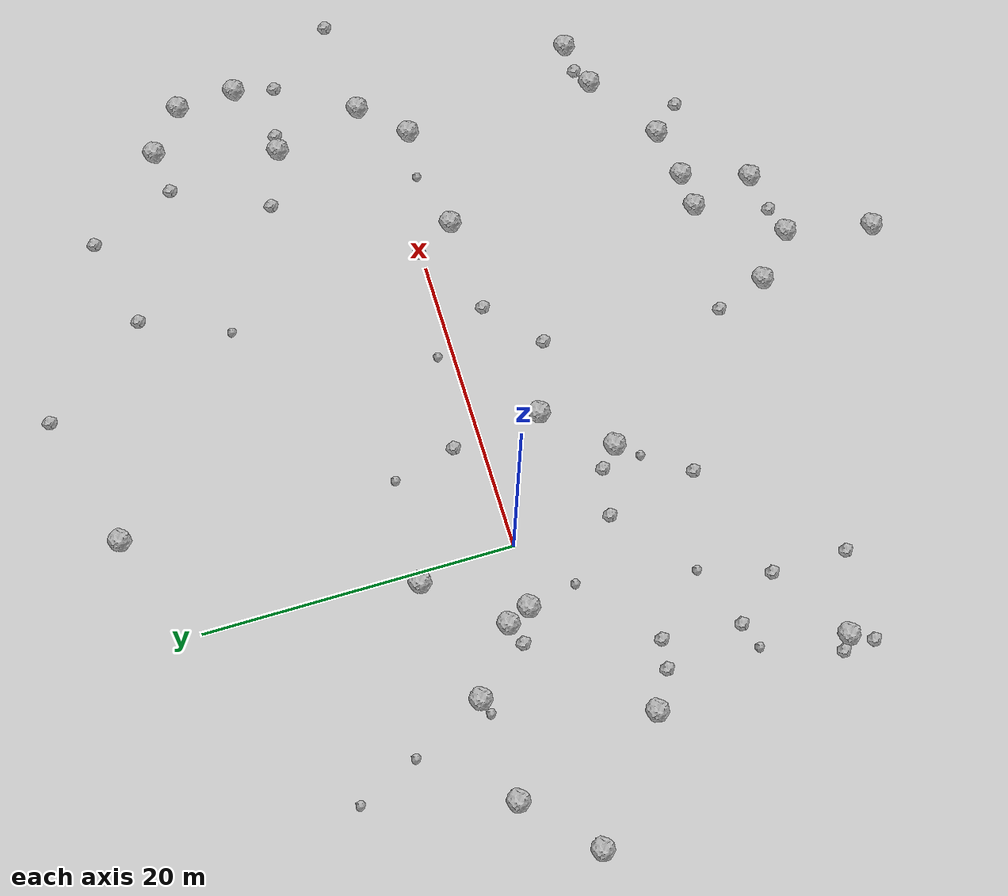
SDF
<sdf version="1.6">
 <world name="default">
  <include><uri>model://custom_ground</uri></include>
  <include><uri>model://sun</uri></include>
  <model name="rock1_0_0">
   <include><uri>model://rock1</uri><pose>-15.155290944000953 4.365618940866753 0.5 0 0 0</pose></include>
  </model>
  <model name="rock1_0_1">
   <include><uri>model://rock1</uri><pose>30.365419000079648 -14.592991532856605 0.5 0 0 0</pose></include>
  </model>
  <model name="rock1_0_2">
   <include><uri>model://rock1</uri><pose>-4.685724601052222 1.8078116303039735 0.5 0 0 0</pose></include>
  </model>
  <model name="rock1_0_3">
   <include><uri>model://rock1</uri><pose>32.927821810276846 1.2446686735971895 0.5 0 0 0</pose></include>
  </model>
  <model name="rock1_0_4">
   <include><uri>model://rock1</uri><pose>30.150597260708807 -1.5976378029808984 0.5 0 0 0</pose></include>
  </model>
  <model name="rock1_0_5">
   <include><uri>model://rock1</uri><pose>20.384381064537685 -22.731983526428003 0.5 0 0 0</pose></include>
  </model>
  <model name="rock1_0_6">
   <include><uri>model://rock1</uri><pose>-4.009605879602944 0.30030426166214497 0.5 0 0 0</pose></include>
  </model>
  <model name="rock1_0_7">
   <include><uri>model://rock1</uri><pose>25.352205897862348 -17.819912968124996 0.5 0 0 0</pose></include>
  </model>
  <model name="rock1_0_8">
   <include><uri>model://rock1</uri><pose>12.92503399981031 -21.008087417505813 0.5 0 0 0</pose></include>
  </model>
  <model name="rock1_0_9">
   <include><uri>model://rock1</uri><pose>-0.6413970402056322 6.295935949184333 0.5 0 0 0</pose></include>
  </model>
  <model name="rock1_0_10">
   <include><uri>model://rock1</uri><pose>15.815537231078586 -23.655461341816356 0.5 0 0 0</pose></include>
  </model>
  <model name="rock1_0_11">
   <include><uri>model://rock1</uri><pose>7.247741048486212 23.49112492799059 0.5 0 0 0</pose></include>
  </model>
  <model name="rock1_0_12">
   <include><uri>model://rock1</uri><pose>33.64038131830326 -13.838886148199528 0.5 0 0 0</pose></include>
  </model>
  <model name="rock1_0_13">
   <include><uri>model://rock1</uri><pose>33.44294067882 15.345545770132247 0.5 0 0 0</pose></include>
  </model>
  <model name="rock1_0_14">
   <include><uri>model://rock1</uri><pose>8.048631857187619 -4.091274904823361 0.5 0 0 0</pose></include>
  </model>
  <model name="rock1_0_15">
   <include><uri>model://rock1</uri><pose>31.29054005657496 7.2509887046850565 0.5 0 0 0</pose></include>
  </model>
  <model name="rock1_0_16">
   <include><uri>model://rock1</uri><pose>-12.38020011686414 -5.212112611298366 0.5 0 0 0</pose></include>
  </model>
  <model name="rock1_0_17">
   <include><uri>model://rock1</uri><pose>22.71396660971383 -2.4293549881669954 0.5 0 0 0</pose></include>
  </model>
  <model name="rock1_0_18">
   <include><uri>model://rock1</uri><pose>-19.237186051917103 0.4430849612807286 0.5 0 0 0</pose></include>
  </model>
  <model name="rock1_0_19">
   <include><uri>model://rock1</uri><pose>4.582420236013519 -8.045089005737445 0.5 0 0 0</pose></include>
  </model>
  <model name="rock1_0_20">
   <include><uri>model://rock1</uri><pose>14.606986802614287 -29.32037547963169 0.5 0 0 0</pose></include>
  </model>
  <model name="rock1_0_21">
   <include><uri>model://rock1</uri><pose>19.337013078334465 -18.437686806451623 0.5 0 0 0</pose></include>
  </model>
  <model name="rock1_0_22">
   <include><uri>model://rock1</uri><pose>-11.212825088565852 -17.952480824957064 0.5 0 0 0</pose></include>
  </model>
  <model name="rock1_0_23">
   <include><uri>model://rock1</uri><pose>36.42996186329433 13.011886992763806 0.5 0 0 0</pose></include>
  </model>
  <model name="rock1_0_24">
   <include><uri>model://rock1</uri><pose>-8.688486869352467 4.767346848159434 0.5 0 0 0</pose></include>
  </model>
  <model name="rock1_0_25">
   <include><uri>model://rock1</uri><pose>36.66671568372976 9.023741943835404 0.5 0 0 0</pose></include>
  </model>
  <model name="rock1_0_26">
   <include><uri>model://rock1</uri><pose>21.82293567414112 -18.34543638744787 0.5 0 0 0</pose></include>
  </model>
  <model name="rock2_0_0">
   <include><uri>model://rock2</uri><pose>21.152890966220184 0.19108551380897865 0.3 0 0 0</pose></include>
  </model>
  <model name="rock2_0_1">
   <include><uri>model://rock2</uri><pose>11.662210644562542 -17.592340504596066 0.3 0 0 0</pose></include>
  </model>
  <model name="rock2_0_2">
   <include><uri>model://rock2</uri><pose>-6.148561448682832 -19.68203694927474 0.3 0 0 0</pose></include>
  </model>
  <model name="rock2_0_3">
   <include><uri>model://rock2</uri><pose>-6.188656776708035 -14.812885038507101 0.3 0 0 0</pose></include>
  </model>
  <model name="rock2_0_4">
   <include><uri>model://rock2</uri><pose>3.2661009799126397 -6.852577313613207 0.3 0 0 0</pose></include>
  </model>
  <model name="rock2_0_5">
   <include><uri>model://rock2</uri><pose>27.813342868772153 20.698263095049207 0.3 0 0 0</pose></include>
  </model>
  <model name="rock2_0_6">
   <include><uri>model://rock2</uri><pose>16.165194366615147 -2.752231568381738 0.3 0 0 0</pose></include>
  </model>
  <model name="rock2_0_7">
   <include><uri>model://rock2</uri><pose>16.212905079257908 26.094483878973136 0.3 0 0 0</pose></include>
  </model>
  <model name="rock2_0_8">
   <include><uri>model://rock2</uri><pose>17.6675344452634 -23.152910236781203 0.3 0 0 0</pose></include>
  </model>
  <model name="rock2_0_9">
   <include><uri>model://rock2</uri><pose>12.711931435383775 -5.839265471316008 0.3 0 0 0</pose></include>
  </model>
  <model name="rock2_0_10">
   <include><uri>model://rock2</uri><pose>-6.124382838753309 1.2773143776204137 0.3 0 0 0</pose></include>
  </model>
  <model name="rock2_0_11">
   <include><uri>model://rock2</uri><pose>1.5112490304035333 -12.302126105353025 0.3 0 0 0</pose></include>
  </model>
  <model name="rock2_0_12">
   <include><uri>model://rock2</uri><pose>21.532274397430683 19.118262289963198 0.3 0 0 0</pose></include>
  </model>
  <model name="rock2_0_13">
   <include><uri>model://rock2</uri><pose>30.317073277652057 14.957250905905234 0.3 0 0 0</pose></include>
  </model>
  <model name="rock2_0_14">
   <include><uri>model://rock2</uri><pose>39.77590099883706 1.7424593463242708 0.3 0 0 0</pose></include>
  </model>
  <model name="rock2_0_15">
   <include><uri>model://rock2</uri><pose>-10.110485681391895 -6.625393339734941 0.3 0 0 0</pose></include>
  </model>
  <model name="rock2_0_16">
   <include><uri>model://rock2</uri><pose>27.31353427778742 8.713380195348279 0.3 0 0 0</pose></include>
  </model>
  <model name="rock2_0_17">
   <include><uri>model://rock2</uri><pose>32.41477166611019 7.1520383299204155 0.3 0 0 0</pose></include>
  </model>
  <model name="rock2_0_18">
   <include><uri>model://rock2</uri><pose>-12.092192879682191 -17.331173158909266 0.3 0 0 0</pose></include>
  </model>
  <model name="rock2_0_19">
   <include><uri>model://rock2</uri><pose>-11.957030908008559 -19.358342614783044 0.3 0 0 0</pose></include>
  </model>
  <model name="rock2_0_20">
   <include><uri>model://rock2</uri><pose>-8.754265414970348 -11.917275561621608 0.3 0 0 0</pose></include>
  </model>
  <model name="rock2_0_21">
   <include><uri>model://rock2</uri><pose>7.2727001131522115 1.8274199884027205 0.3 0 0 0</pose></include>
  </model>
  <model name="rock2_0_22">
   <include><uri>model://rock2</uri><pose>36.012458113281525 6.333173507131271 0.3 0 0 0</pose></include>
  </model>
  <model name="rock2_0_23">
   <include><uri>model://rock2</uri><pose>-8.271981190895426 -6.906790240898143 0.3 0 0 0</pose></include>
  </model>
  <model name="rock2_0_24">
   <include><uri>model://rock2</uri><pose>0.19010698496141032 -6.326412438396591 0.3 0 0 0</pose></include>
  </model>
  <model name="rock2_0_25">
   <include><uri>model://rock2</uri><pose>27.060271791631877 -19.732829817937404 0.3 0 0 0</pose></include>
  </model>
  <model name="rock2_0_26">
   <include><uri>model://rock2</uri><pose>31.52717284918328 -13.904625345878227 0.3 0 0 0</pose></include>
  </model>
  <model name="rock3_0_0">
   <include><uri>model://rock3</uri><pose>-10.453749237029964 -12.517764969547759 0.2 0 0 0</pose></include>
  </model>
  <model name="rock3_0_1">
   <include><uri>model://rock3</uri><pose>-12.805476436230434 13.374938108711532 0.2 0 0 0</pose></include>
  </model>
  <model name="rock3_0_2">
   <include><uri>model://rock3</uri><pose>26.66981045385903 -1.2707296340441907 0.2 0 0 0</pose></include>
  </model>
  <model name="rock3_0_3">
   <include><uri>model://rock3</uri><pose>3.4385253006144296 -9.449663513751108 0.2 0 0 0</pose></include>
  </model>
  <model name="rock3_0_4">
   <include><uri>model://rock3</uri><pose>-4.751588377200255 -10.425232680521628 0.2 0 0 0</pose></include>
  </model>
  <model name="rock3_0_5">
   <include><uri>model://rock3</uri><pose>-3.44593079212785 -2.924942903053079 0.2 0 0 0</pose></include>
  </model>
  <model name="rock3_0_6">
   <include><uri>model://rock3</uri><pose>19.076829789098298 13.418282969422378 0.2 0 0 0</pose></include>
  </model>
  <model name="rock3_0_7">
   <include><uri>model://rock3</uri><pose>-9.739824129699915 4.393362214599243 0.2 0 0 0</pose></include>
  </model>
  <model name="rock3_0_8">
   <include><uri>model://rock3</uri><pose>-11.066748216391941 9.469054845625855 0.2 0 0 0</pose></include>
  </model>
  <model name="rock3_0_9">
   <include><uri>model://rock3</uri><pose>13.591698132430707 1.0210183171062006 0.2 0 0 0</pose></include>
  </model>
  <model name="rock3_0_10">
   <include><uri>model://rock3</uri><pose>6.188529766204272 5.941837475458655 0.2 0 0 0</pose></include>
  </model>
 </world>
</sdf>
